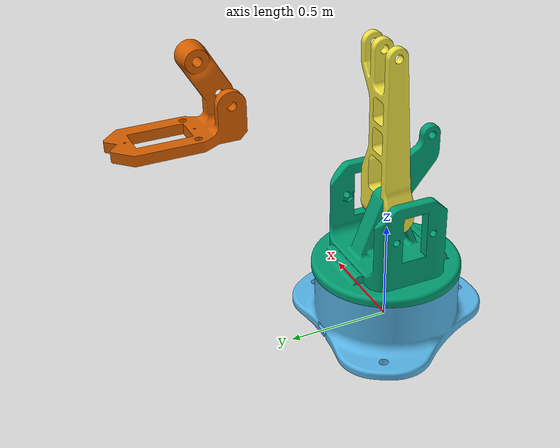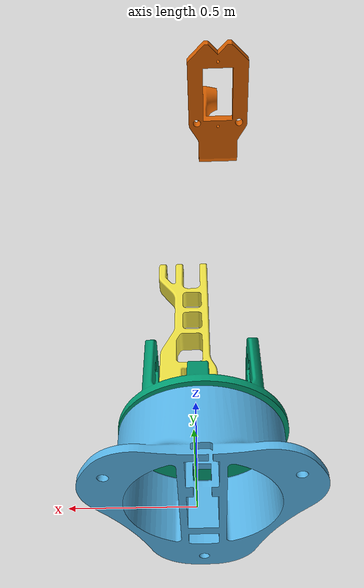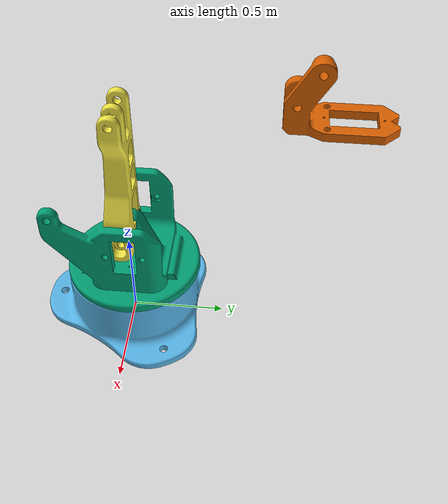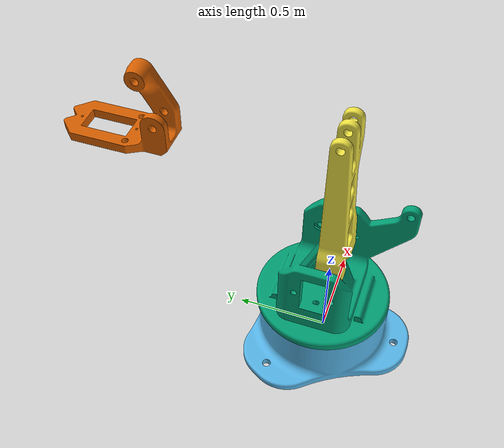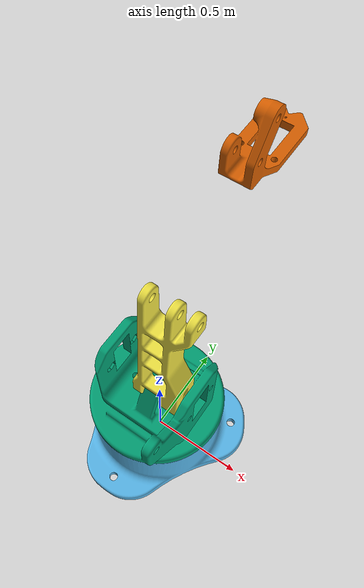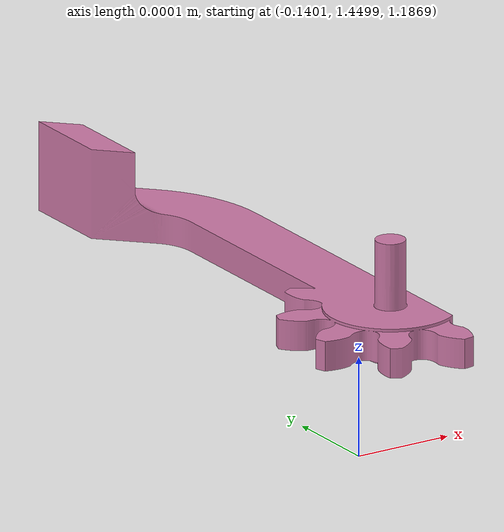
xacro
<?xml version="1.0"?>
<robot xmlns:xacro="http://www.ros.org/wiki/xacro" name="arduinobot">

    <!-- Useful Variables (Properties) -->
    <xacro:property name="PI" value="3.14159265359" />
    <xacro:property name="low_limit_base_plate_rotation" value="-${PI/2}" />
    <xacro:property name="up_limit_base_plate_rotation" value="${PI/2}" />
    <xacro:property name="low_limit_forward_drive_arm_rotation" value="-${PI/2}" />
    <xacro:property name="up_limit_forward_drive_arm_rotation" value="${PI/2}" />
    <xacro:property name="low_limit_horizontal_arm_rotation" value="-${PI/2}" />
    <xacro:property name="up_limit_horizontal_arm_arm_rotation" value="${PI/2}" />

    <!-- Links -->
    <link name="world"/>

    <link name="base_link">
        <visual>
            <origin rpy="0 0 0" xyz="-0.5 -0.5 0"/>
            <geometry>
                <mesh filename="package://arduinobot_description/mesh/basement.STL" scale="0.01 0.01 0.01"/>
            </geometry>
        </visual>
        <collision>
            <origin rpy="0 0 0" xyz="-0.5 -0.5 0"/>
            <geometry>
                <mesh filename="package://arduinobot_description/mesh/basement.STL" scale="0.01 0.01 0.01"/>
            </geometry>
        </collision>
    </link>

    <link name="base_plate">
        <visual>
            <origin rpy="0 0 0" xyz="-0.39 -0.39 -0.56"/>
            <geometry>
                <mesh filename="package://arduinobot_description/mesh/base_plate.STL" scale="0.01 0.01 0.01"/>
            </geometry>
        </visual>
        <collision>
            <origin rpy="0 0 0" xyz="-0.39 -0.39 -0.56"/>
            <geometry>
                <mesh filename="package://arduinobot_description/mesh/round_plate.STL" scale="0.01 0.01 0.01"/>
            </geometry>
        </collision>
    </link>

    <link name="forward_drive_arm">
        <visual>
            <origin rpy=" 0 -${PI/2} ${PI/2}" xyz="0.19 0.06 -0.08"/>
            <geometry>
                <mesh filename="package://arduinobot_description/mesh/forward_drive_arm.STL" scale="0.01 0.01 0.01"/>
            </geometry>
        </visual>
        <collision>
            <origin rpy=" 0 -${PI/2} ${PI/2}" xyz="0.19 0.06 -0.08"/>
            <geometry>
                <mesh filename="package://arduinobot_description/mesh/forward_drive_arm.STL" scale="0.01 0.01 0.01"/>
            </geometry>
        </collision>
    </link>

    <link name="horizontal_arm">
        <visual>
            <origin rpy="${PI/2} 0 ${PI/2}" xyz="-0.03 -0.4 -0.06"/>
            <geometry>
                <mesh filename="package://arduinobot_description/mesh/horizontal_arm.STL" scale="0.01 0.01 0.01"/>
            </geometry>
        </visual>
        <collision>
            <origin rpy="${PI/2} 0 ${PI/2}" xyz="-0.03 -0.4 -0.06"/>
            <geometry>
                <mesh filename="package://arduinobot_description/mesh/horizontal_arm.STL" scale="0.01 0.01 0.01"/>
            </geometry>
        </collision>
    </link>

    <link name="claw_support">
        <visual>
            <origin rpy="0 0 ${PI/2}" xyz="0 -0.05 -0.15"/>
            <geometry>
                <mesh filename="package://arduinobot_description/mesh/claw_support.STL" scale="0.01 0.01 0.01"/>
            </geometry>
        </visual>
        <collision>
            <origin rpy="0 0 ${PI/2}" xyz="0 -0.05 -0.15"/>
            <geometry>
                <mesh filename="package://arduinobot_description/mesh/claw_support.STL" scale="0.01 0.01 0.01"/>
            </geometry>
        </collision>
    </link>

    <link name="gripper_right">
        <visual>
            <origin rpy="0 0 -${PI/2}" xyz="-0.1 0.50 -0.1"/>
            <geometry>
                <mesh filename="package://arduinobot_description/mesh/right_finger.STL" scale="0.01 0.01 0.01"/>
            </geometry>
        </visual>
        <collision>
            <origin rpy="0 0 -${PI/2}" xyz="-0.1 0.50 -0.1"/>
            <geometry>
                <mesh filename="package://arduinobot_description/mesh/right_finger.STL" scale="0.01 0.01 0.01"/>
            </geometry>
        </collision>
    </link>

    <link name="gripper_left">
        <visual>
            <origin rpy="0 0 -${PI/2}" xyz="-0.04 0.50 -0.1"/>
            <geometry>
                <mesh filename="package://arduinobot_description/mesh/left_finger.STL" scale="0.01 0.01 0.01"/>
            </geometry>
        </visual>
        <collision>
            <origin rpy="0 0 -${PI/2}" xyz="-0.2 0.50 -0.1"/>
            <geometry>
                <mesh filename="package://arduinobot_description/mesh/left_finger.STL" scale="0.01 0.01 0.01"/>
            </geometry>
        </collision>
    </link>

    <link name="tool_link"></link>

    <!-- Joints -->
    <joint name="joint_world" type="fixed">
        <parent link="world" />
        <child link="base_link" />
        <origin xyz="0 0 0" rpy="0 0 0" />
    </joint>

    <joint name ="joint_1" type="revolute">
        <parent link="base_link"/>
        <child link = "base_plate"/>
        <origin xyz="0 0 0.307"/>
        <axis xyz="0 0 1"/>
        <limit lower="-${PI/2}" upper="${PI/2}" effort="1000.0" velocity="0.5"/>
    </joint>

    <joint name ="joint_2" type="revolute">
        <parent link="base_plate"/>
        <child link = "forward_drive_arm"/>
        <origin xyz="0 0 0.28"/>
        <axis xyz="1 0 0"/>
        <limit lower="-${PI/2}" upper="${PI/2}" effort="1000.0" velocity="0.5"/>
    </joint>

    <joint name ="joint_3" type="revolute">
        <parent link="forward_drive_arm"/>
        <child link = "horizontal_arm"/>
        <origin xyz="0 0 0.8"/>
        <axis xyz="1 0 0"/>
        <limit lower="-${PI/2}" upper="${PI/2}" effort="1000.0" velocity="0.5"/>
    </joint>

    <joint name ="horizontal_arm_to_claw_support" type="fixed">
        <parent link="horizontal_arm"/>
        <child link = "claw_support"/>
        <origin xyz="0 0.82 0"/>
    </joint>

    <joint name ="joint_4" type="revolute">
        <parent link="claw_support"/>
        <child link = "gripper_right"/>
        <origin xyz="-0.04 0.13 -0.1"/>
        <axis xyz="0 0 1"/>
        <limit lower="-${PI/2}" upper="0" effort="1000.0" velocity="0.5"/>
    </joint>

    <joint name ="joint_5" type="revolute">
        <parent link="claw_support"/>
        <child link = "gripper_left"/>
        <origin xyz="-0.22 0.13 -0.1"/>
        <axis xyz="0 0 1"/>
        <limit lower="0" upper="${PI/2}" effort="1000.0" velocity="0.5"/>
        <mimic joint="joint_4" multiplier="-1" offset="0"/>
    </joint>

    <joint name ="gripper_right_to_tool" type="fixed">
        <parent link="gripper_right"/>
        <child link = "tool_link"/>
        <origin xyz="0 0 0"/>
    </joint>

    <!-- Transmissions-->
    <transmission name="transmission_1">
        <type>transmission_interface/SimpleTransmission</type>
        <joint name="joint_1">
            <hardwareInterface>PositionJointInterface</hardwareInterface>
        </joint>
        <actuator name="motor_1">
            <hardwareInterface>PositionJointInterface</hardwareInterface>
            <mechanicalReduction>1</mechanicalReduction>
        </actuator>
    </transmission>

    <transmission name="transmission_2">
        <type>transmission_interface/SimpleTransmission</type>
        <joint name="joint_2">
            <hardwareInterface>PositionJointInterface</hardwareInterface>
        </joint>
        <actuator name="motor_2">
            <hardwareInterface>PositionJointInterface</hardwareInterface>
            <mechanicalReduction>1</mechanicalReduction>
        </actuator>
    </transmission>

    <transmission name="transmission_3">
        <type>transmission_interface/SimpleTransmission</type>
        <joint name="joint_3">
            <hardwareInterface>PositionJointInterface</hardwareInterface>
        </joint>
        <actuator name="motor_3">
            <hardwareInterface>PositionJointInterface</hardwareInterface>
            <mechanicalReduction>1</mechanicalReduction>
        </actuator>
    </transmission>

    <transmission name="transmission_4">
        <type>transmission_interface/SimpleTransmission</type>
        <joint name="joint_4">
            <hardwareInterface>PositionJointInterface</hardwareInterface>
        </joint>
        <actuator name="motor_4">
            <hardwareInterface>PositionJointInterface</hardwareInterface>
            <mechanicalReduction>1</mechanicalReduction>
        </actuator>
    </transmission>

    <!-- Gazebo Configuration section -->
    <gazebo>
        <plugin name="gazebo_ros_control" filename="libgazebo_ros_control.so">
            <robotNamespace>/arduinobot</robotNamespace>
            <robotSimType>gazbo_roscontrol/DefaultRobotHWSim</robotSimType>
        </plugin>
    </gazebo>

</robot>
